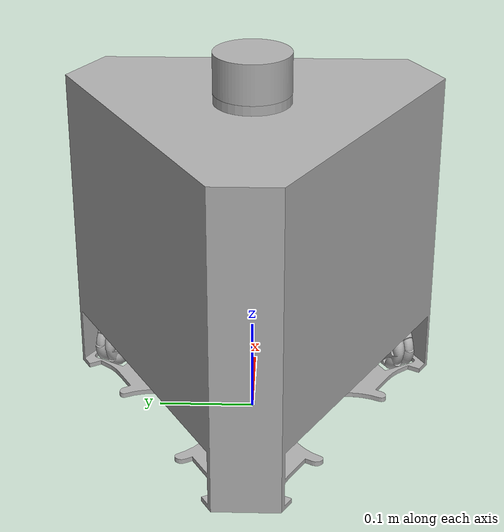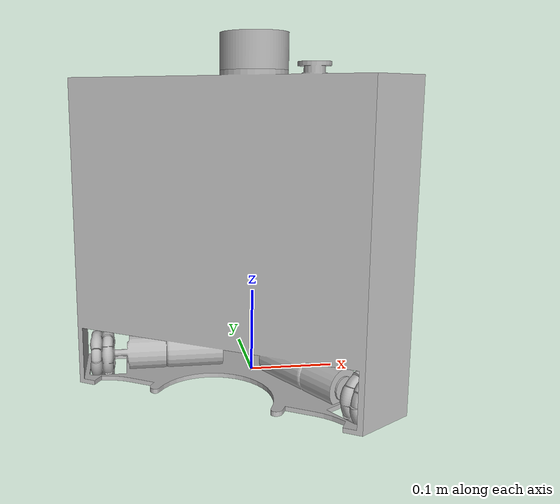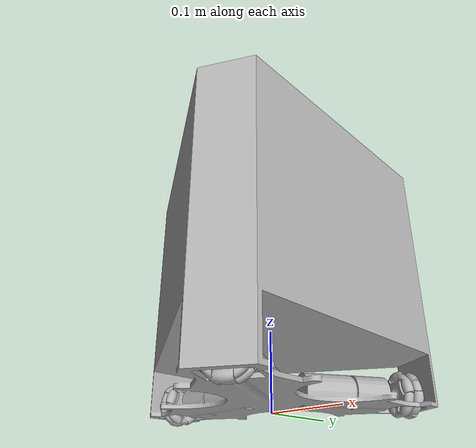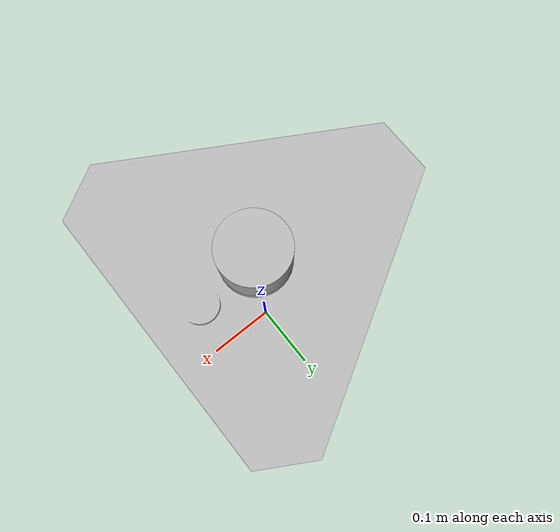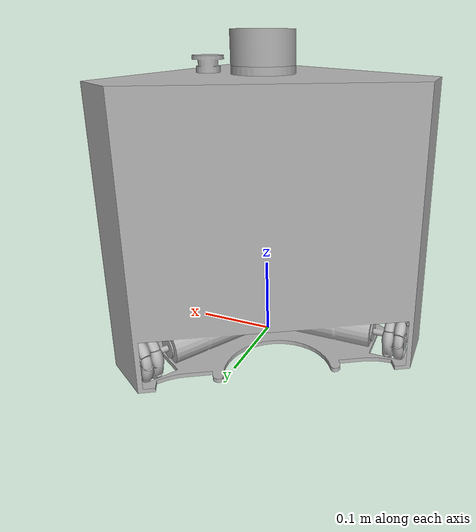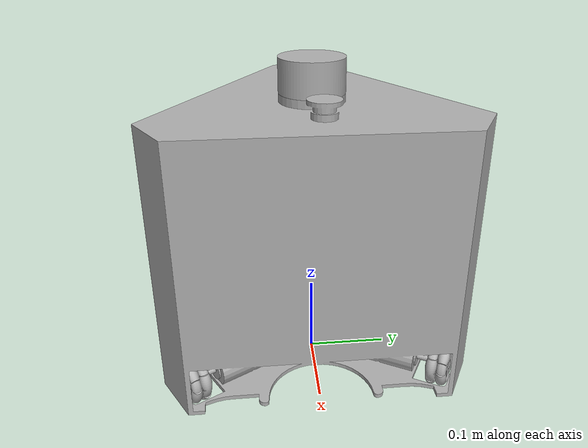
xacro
<?xml version="1.0" ?>
<robot name="tribot2023urdf" xmlns:xacro="http://www.ros.org/wiki/xacro">

<xacro:include filename="$(find tribot2023urdf_description)/urdf/materials.xacro" />
<xacro:include filename="$(find tribot2023urdf_description)/urdf/tribot2023urdf.trans" />
<xacro:include filename="$(find tribot2023urdf_description)/urdf/tribot2023urdf.gazebo" />
<link name="base_link">
  <inertial>
    <origin xyz="4.947386574344437e-05 3.69727636149967e-06 0.2063206729832077" rpy="0 0 0"/>
    <mass value="184.42831079049344"/>
    <inertia ixx="2.663181" iyy="2.663734" izz="2.718376" ixy="-4.9e-05" iyz="-0.000104" ixz="-0.001242"/>
  </inertial>
  <visual>
    <origin xyz="0 0 0" rpy="0 0 0"/>
    <geometry>
      <mesh filename="package://tribot2023urdf_description/meshes/base_link.stl" scale="0.001 0.001 0.001"/>
    </geometry>
    <material name="silver"/>
  </visual>
  <collision>
    <origin xyz="0 0 0" rpy="0 0 0"/>
    <geometry>
      <mesh filename="package://tribot2023urdf_description/meshes/base_link.stl" scale="0.001 0.001 0.001"/>
    </geometry>
  </collision>
</link>

<link name="wheel_1_1">
  <inertial>
    <origin xyz="-5.672276000806553e-05 -1.0146853210952665e-08 5.150149574167928e-09" rpy="0 0 0"/>
    <mass value="0.3928101364288651"/>
    <inertia ixx="0.000159" iyy="0.000101" izz="0.000101" ixy="-0.0" iyz="-0.0" ixz="0.0"/>
  </inertial>
  <visual>
    <origin xyz="0.17874 -0.0 -0.029" rpy="0 0 0"/>
    <geometry>
      <mesh filename="package://tribot2023urdf_description/meshes/wheel_1_1.stl" scale="0.001 0.001 0.001"/>
    </geometry>
    <material name="silver"/>
  </visual>
  <collision>
    <origin xyz="0.17874 -0.0 -0.029" rpy="0 0 0"/>
    <geometry>
      <mesh filename="package://tribot2023urdf_description/meshes/wheel_1_1.stl" scale="0.001 0.001 0.001"/>
    </geometry>
  </collision>
</link>

<link name="wheel_2_1">
  <inertial>
    <origin xyz="2.8338520443177417e-05 -4.9510160979343576e-05 6.468955225658046e-09" rpy="0 0 0"/>
    <mass value="0.39281004012930903"/>
    <inertia ixx="0.000115" iyy="0.000145" izz="0.000101" ixy="-2.5e-05" iyz="0.0" ixz="-0.0"/>
  </inertial>
  <visual>
    <origin xyz="-0.08937 0.154793 -0.029" rpy="0 0 0"/>
    <geometry>
      <mesh filename="package://tribot2023urdf_description/meshes/wheel_2_1.stl" scale="0.001 0.001 0.001"/>
    </geometry>
    <material name="silver"/>
  </visual>
  <collision>
    <origin xyz="-0.08937 0.154793 -0.029" rpy="0 0 0"/>
    <geometry>
      <mesh filename="package://tribot2023urdf_description/meshes/wheel_2_1.stl" scale="0.001 0.001 0.001"/>
    </geometry>
  </collision>
</link>

<link name="wheel_3_1">
  <inertial>
    <origin xyz="2.8375160984195347e-05 4.951714439502264e-05 -2.434836562231757e-08" rpy="0 0 0"/>
    <mass value="0.39280924045812143"/>
    <inertia ixx="0.000115" iyy="0.000145" izz="0.000101" ixy="2.5e-05" iyz="-0.0" ixz="0.0"/>
  </inertial>
  <visual>
    <origin xyz="-0.08937 -0.154793 -0.029" rpy="0 0 0"/>
    <geometry>
      <mesh filename="package://tribot2023urdf_description/meshes/wheel_3_1.stl" scale="0.001 0.001 0.001"/>
    </geometry>
    <material name="silver"/>
  </visual>
  <collision>
    <origin xyz="-0.08937 -0.154793 -0.029" rpy="0 0 0"/>
    <geometry>
      <mesh filename="package://tribot2023urdf_description/meshes/wheel_3_1.stl" scale="0.001 0.001 0.001"/>
    </geometry>
  </collision>
</link>

<link name="lidar_2_1">
  <inertial>
    <origin xyz="-2.320379200916381e-16 6.381042802520046e-17 0.020507000000000053" rpy="0 0 0"/>
    <mass value="1.538441088874157"/>
    <inertia ixx="0.000801" iyy="0.000801" izz="0.00117" ixy="-0.0" iyz="0.0" ixz="-0.0"/>
  </inertial>
  <visual>
    <origin xyz="0.0 -0.0 -0.358" rpy="0 0 0"/>
    <geometry>
      <mesh filename="package://tribot2023urdf_description/meshes/lidar_2_1.stl" scale="0.001 0.001 0.001"/>
    </geometry>
    <material name="silver"/>
  </visual>
  <collision>
    <origin xyz="0.0 -0.0 -0.358" rpy="0 0 0"/>
    <geometry>
      <mesh filename="package://tribot2023urdf_description/meshes/lidar_2_1.stl" scale="0.001 0.001 0.001"/>
    </geometry>
  </collision>
</link>

<joint name="Rev1" type="continuous">
  <origin xyz="-0.17874 0.0 0.029" rpy="0 0 0"/>
  <parent link="base_link"/>
  <child link="wheel_1_1"/>
  <axis xyz="-1.0 0.0 -0.0"/>
</joint>

<joint name="Rev2" type="continuous">
  <origin xyz="0.08937 -0.154793 0.029" rpy="0 0 0"/>
  <parent link="base_link"/>
  <child link="wheel_2_1"/>
  <axis xyz="0.5 -0.866025 0.0"/>
</joint>

<joint name="Rev3" type="continuous">
  <origin xyz="0.08937 0.154793 0.029" rpy="0 0 0"/>
  <parent link="base_link"/>
  <child link="wheel_3_1"/>
  <axis xyz="0.5 0.866025 0.0"/>
</joint>

<joint name="Rigid1" type="fixed">
  <origin xyz="0.0 0.0 0.358" rpy="0 0 0"/>
  <parent link="base_link"/>
  <child link="lidar_2_1"/>
</joint>

</robot>

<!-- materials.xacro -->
<robot name="tribot2023urdf" xmlns:xacro="http://www.ros.org/wiki/xacro" >

<material name="silver">
  <color rgba="0.700 0.700 0.700 1.000"/>
</material>

</robot>

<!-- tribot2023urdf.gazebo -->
<robot name="tribot2023urdf" xmlns:xacro="http://www.ros.org/wiki/xacro" >

<xacro:property name="body_color" value="Gazebo/Silver" />

<gazebo>
  <plugin name="control" filename="libgazebo_ros_control.so"/>
</gazebo>
<gazebo reference="base_link">
  <material>${body_color}</material>
  <mu1>0.2</mu1>
  <mu2>0.2</mu2>
  <selfCollide>true</selfCollide>
  <gravity>true</gravity>
</gazebo>

<gazebo reference="wheel_1_1">
  <material>${body_color}</material>
  <mu1>0.2</mu1>
  <mu2>0.2</mu2>
  <selfCollide>true</selfCollide>
</gazebo>

<gazebo reference="wheel_2_1">
  <material>${body_color}</material>
  <mu1>0.2</mu1>
  <mu2>0.2</mu2>
  <selfCollide>true</selfCollide>
</gazebo>

<gazebo reference="wheel_3_1">
  <material>${body_color}</material>
  <mu1>0.2</mu1>
  <mu2>0.2</mu2>
  <selfCollide>true</selfCollide>
</gazebo>

<gazebo reference="lidar_2_1">
  <material>${body_color}</material>
  <mu1>0.2</mu1>
  <mu2>0.2</mu2>
  <selfCollide>true</selfCollide>
</gazebo>

</robot>
